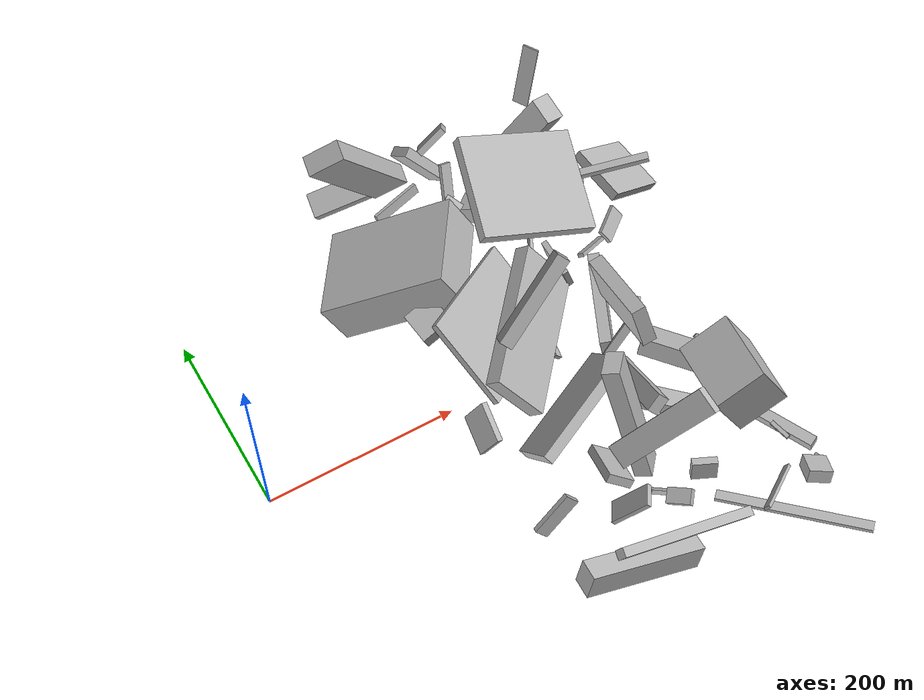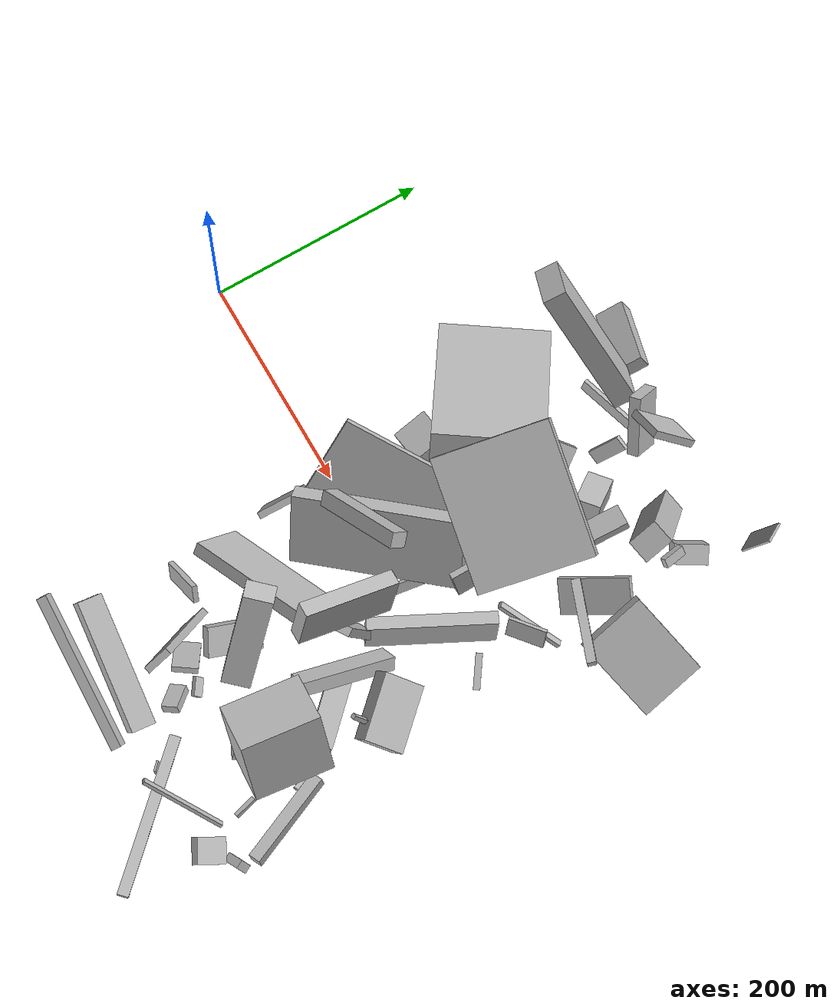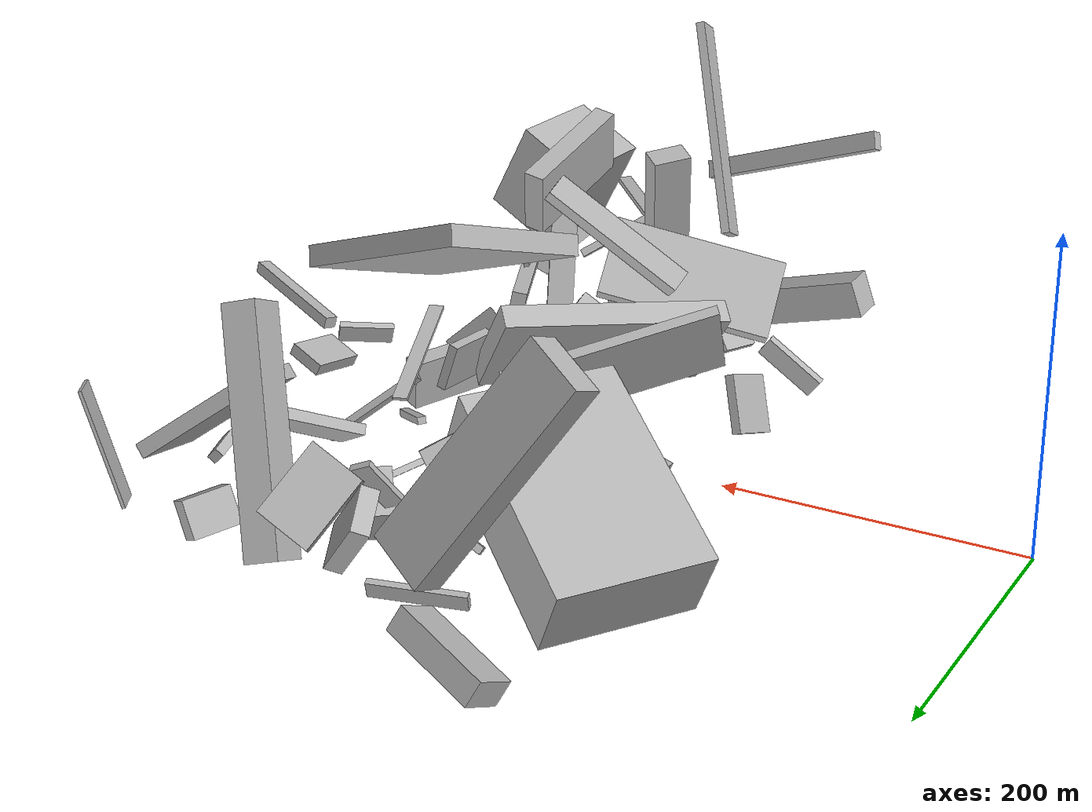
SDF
<sdf version="1.6">
 <world name="default">
  <model name="building_1">
   <static>0</static>
   <pose>309.46362390081805 201.35652738300936 47.48775551985342 0.43576493843103864 0.506766276595603 1.9743907321214966</pose>
   <link name="link">
    <gravity>0</gravity>
    <pose>0 0 19.0 0 0 0</pose>
    <collision name="collision"><geometry><box><size>4 13 38</size></box></geometry></collision>
    <visual name="visual">
     <cast_shadows>0</cast_shadows>
     <geometry><box><size>4 13 38</size></box></geometry>
     <material>
      <script>
       <uri>model://HANNAS_wall/materials/scripts</uri>
       <uri>model://HANNAS_wall/materials/textures</uri>
       <name>vrc/HANNAS_wall</name>
      </script>
     </material>
    </visual>
   </link>
  </model>
  <model name="building_3">
   <static>0</static>
   <pose>211.67828912738628 155.78817886532025 68.08862332421445 3.128858214851699 -0.5135115431409025 -0.5868482593631186</pose>
   <link name="link">
    <gravity>0</gravity>
    <pose>0 0 24.5 0 0 0</pose>
    <collision name="collision"><geometry><box><size>142 99 49</size></box></geometry></collision>
    <visual name="visual">
     <cast_shadows>0</cast_shadows>
     <geometry><box><size>142 99 49</size></box></geometry>
     <material>
      <script>
       <uri>model://HANNAS_wall/materials/scripts</uri>
       <uri>model://HANNAS_wall/materials/textures</uri>
       <name>vrc/HANNAS_wall</name>
      </script>
     </material>
    </visual>
   </link>
  </model>
  <model name="building_4">
   <static>0</static>
   <pose>359.27400351940173 -121.61541307797461 53.61073402621936 2.182763491040047 0.6218465289626921 -2.8656768899968434</pose>
   <link name="link">
    <gravity>0</gravity>
    <pose>0 0 47.5 0 0 0</pose>
    <collision name="collision"><geometry><box><size>19 13 95</size></box></geometry></collision>
    <visual name="visual">
     <cast_shadows>0</cast_shadows>
     <geometry><box><size>19 13 95</size></box></geometry>
     <material>
      <script>
       <uri>model://HANNAS_wall/materials/scripts</uri>
       <uri>model://HANNAS_wall/materials/textures</uri>
       <name>vrc/HANNAS_wall</name>
      </script>
     </material>
    </visual>
   </link>
  </model>
  <model name="building_7">
   <static>0</static>
   <pose>348.3013595316348 -232.51220273986084 62.30479469964007 -0.654387931315331 1.4542069693492485 -1.4633512062814251</pose>
   <link name="link">
    <gravity>0</gravity>
    <pose>0 0 72.0 0 0 0</pose>
    <collision name="collision"><geometry><box><size>4 10 144</size></box></geometry></collision>
    <visual name="visual">
     <cast_shadows>0</cast_shadows>
     <geometry><box><size>4 10 144</size></box></geometry>
     <material>
      <script>
       <uri>model://HANNAS_wall/materials/scripts</uri>
       <uri>model://HANNAS_wall/materials/textures</uri>
       <name>vrc/HANNAS_wall</name>
      </script>
     </material>
    </visual>
   </link>
  </model>
  <model name="building_9">
   <static>0</static>
   <pose>319.9178127410755 -129.8583718795964 98.54489155091844 -1.1713281129779392 -1.259479159622659 2.0318326055238733</pose>
   <link name="link">
    <gravity>0</gravity>
    <pose>0 0 13.0 0 0 0</pose>
    <collision name="collision"><geometry><box><size>150 17 26</size></box></geometry></collision>
    <visual name="visual">
     <cast_shadows>0</cast_shadows>
     <geometry><box><size>150 17 26</size></box></geometry>
     <material>
      <script>
       <uri>model://HANNAS_wall/materials/scripts</uri>
       <uri>model://HANNAS_wall/materials/textures</uri>
       <name>vrc/HANNAS_wall</name>
      </script>
     </material>
    </visual>
   </link>
  </model>
  <model name="building_10">
   <static>0</static>
   <pose>316.39583741115655 62.48465080775631 57.22004347062631 -1.201629691936962 -0.7011251375763857 1.9411494548542612</pose>
   <link name="link">
    <gravity>0</gravity>
    <pose>0 0 68.0 0 0 0</pose>
    <collision name="collision"><geometry><box><size>98 6 136</size></box></geometry></collision>
    <visual name="visual">
     <cast_shadows>0</cast_shadows>
     <geometry><box><size>98 6 136</size></box></geometry>
     <material>
      <script>
       <uri>model://HANNAS_wall/materials/scripts</uri>
       <uri>model://HANNAS_wall/materials/textures</uri>
       <name>vrc/HANNAS_wall</name>
      </script>
     </material>
    </visual>
   </link>
  </model>
  <model name="building_12">
   <static>0</static>
   <pose>385.51148551328515 62.179323880258615 59.6660498435576 -2.2493902127419956 -0.413842254702614 -0.6548503010820251</pose>
   <link name="link">
    <gravity>0</gravity>
    <pose>0 0 35.0 0 0 0</pose>
    <collision name="collision"><geometry><box><size>6 4 70</size></box></geometry></collision>
    <visual name="visual">
     <cast_shadows>0</cast_shadows>
     <geometry><box><size>6 4 70</size></box></geometry>
     <material>
      <script>
       <uri>model://HANNAS_wall/materials/scripts</uri>
       <uri>model://HANNAS_wall/materials/textures</uri>
       <name>vrc/HANNAS_wall</name>
      </script>
     </material>
    </visual>
   </link>
  </model>
  <model name="building_14">
   <static>0</static>
   <pose>264.49621758561995 -244.52331242339997 47.64009809487415 3.0064246165483777 0.28639670517796556 -0.1086999341273628</pose>
   <link name="link">
    <gravity>0</gravity>
    <pose>0 0 13.5 0 0 0</pose>
    <collision name="collision"><geometry><box><size>120 22 27</size></box></geometry></collision>
    <visual name="visual">
     <cast_shadows>0</cast_shadows>
     <geometry><box><size>120 22 27</size></box></geometry>
     <material>
      <script>
       <uri>model://HANNAS_wall/materials/scripts</uri>
       <uri>model://HANNAS_wall/materials/textures</uri>
       <name>vrc/HANNAS_wall</name>
      </script>
     </material>
    </visual>
   </link>
  </model>
  <model name="building_15">
   <static>0</static>
   <pose>371.9856344263977 -184.61784834907158 23.114268101412023 1.4476724623546866 -0.016943345255074002 -0.44664192721374096</pose>
   <link name="link">
    <gravity>0</gravity>
    <pose>0 0 4.0 0 0 0</pose>
    <collision name="collision"><geometry><box><size>25 23 8</size></box></geometry></collision>
    <visual name="visual">
     <cast_shadows>0</cast_shadows>
     <geometry><box><size>25 23 8</size></box></geometry>
     <material>
      <script>
       <uri>model://HANNAS_wall/materials/scripts</uri>
       <uri>model://HANNAS_wall/materials/textures</uri>
       <name>vrc/HANNAS_wall</name>
      </script>
     </material>
    </visual>
   </link>
  </model>
  <model name="building_17">
   <static>0</static>
   <pose>409.4886636101675 120.23899048069518 110.59745018672916 -0.6172711369329025 -1.3240112378763442 -2.879353847189306</pose>
   <link name="link">
    <gravity>0</gravity>
    <pose>0 0 39.0 0 0 0</pose>
    <collision name="collision"><geometry><box><size>7 8 78</size></box></geometry></collision>
    <visual name="visual">
     <cast_shadows>0</cast_shadows>
     <geometry><box><size>7 8 78</size></box></geometry>
     <material>
      <script>
       <uri>model://HANNAS_wall/materials/scripts</uri>
       <uri>model://HANNAS_wall/materials/textures</uri>
       <name>vrc/HANNAS_wall</name>
      </script>
     </material>
    </visual>
   </link>
  </model>
  <model name="building_19">
   <static>0</static>
   <pose>278.28148205647415 -171.71329424370396 103.8499662033756 -0.2710461245618236 0.407536978835516 -1.429517397415596</pose>
   <link name="link">
    <gravity>0</gravity>
    <pose>0 0 75.0 0 0 0</pose>
    <collision name="collision"><geometry><box><size>24 6 150</size></box></geometry></collision>
    <visual name="visual">
     <cast_shadows>0</cast_shadows>
     <geometry><box><size>24 6 150</size></box></geometry>
     <material>
      <script>
       <uri>model://HANNAS_wall/materials/scripts</uri>
       <uri>model://HANNAS_wall/materials/textures</uri>
       <name>vrc/HANNAS_wall</name>
      </script>
     </material>
    </visual>
   </link>
  </model>
  <model name="building_21">
   <static>0</static>
   <pose>451.4439782812763 -244.2115901558669 52.279972661034776 1.1323295374493418 0.17108012139445933 -0.4919120338889486</pose>
   <link name="link">
    <gravity>0</gravity>
    <pose>0 0 13.0 0 0 0</pose>
    <collision name="collision"><geometry><box><size>23 13 26</size></box></geometry></collision>
    <visual name="visual">
     <cast_shadows>0</cast_shadows>
     <geometry><box><size>23 13 26</size></box></geometry>
     <material>
      <script>
       <uri>model://HANNAS_wall/materials/scripts</uri>
       <uri>model://HANNAS_wall/materials/textures</uri>
       <name>vrc/HANNAS_wall</name>
      </script>
     </material>
    </visual>
   </link>
  </model>
  <model name="building_23">
   <static>0</static>
   <pose>304.738003514838 180.11330503812655 67.74197069879854 0.7941231796602019 -0.9836617274225596 -0.0971532040179213</pose>
   <link name="link">
    <gravity>0</gravity>
    <pose>0 0 13.5 0 0 0</pose>
    <collision name="collision"><geometry><box><size>9 19 27</size></box></geometry></collision>
    <visual name="visual">
     <cast_shadows>0</cast_shadows>
     <geometry><box><size>9 19 27</size></box></geometry>
     <material>
      <script>
       <uri>model://HANNAS_wall/materials/scripts</uri>
       <uri>model://HANNAS_wall/materials/textures</uri>
       <name>vrc/HANNAS_wall</name>
      </script>
     </material>
    </visual>
   </link>
  </model>
  <model name="building_24">
   <static>0</static>
   <pose>324.21815395612686 12.365732566802015 12.207041580689348 -0.09423448038242056 0.6741194637701514 2.9214239972737244</pose>
   <link name="link">
    <gravity>0</gravity>
    <pose>0 0 5.0 0 0 0</pose>
    <collision name="collision"><geometry><box><size>4 39 10</size></box></geometry></collision>
    <visual name="visual">
     <cast_shadows>0</cast_shadows>
     <geometry><box><size>4 39 10</size></box></geometry>
     <material>
      <script>
       <uri>model://HANNAS_wall/materials/scripts</uri>
       <uri>model://HANNAS_wall/materials/textures</uri>
       <name>vrc/HANNAS_wall</name>
      </script>
     </material>
    </visual>
   </link>
  </model>
  <model name="building_26">
   <static>0</static>
   <pose>420.7405414484789 221.76137710201016 59.321164204675554 1.2840117380409617 -0.769377723093428 0.39981676286321555</pose>
   <link name="link">
    <gravity>0</gravity>
    <pose>0 0 10.5 0 0 0</pose>
    <collision name="collision"><geometry><box><size>6 9 21</size></box></geometry></collision>
    <visual name="visual">
     <cast_shadows>0</cast_shadows>
     <geometry><box><size>6 9 21</size></box></geometry>
     <material>
      <script>
       <uri>model://HANNAS_wall/materials/scripts</uri>
       <uri>model://HANNAS_wall/materials/textures</uri>
       <name>vrc/HANNAS_wall</name>
      </script>
     </material>
    </visual>
   </link>
  </model>
  <model name="building_27">
   <static>0</static>
   <pose>220.97745476137584 -123.30411942724339 79.01978659322693 -1.2050605881555982 -0.8408907638800656 -1.4605159921123112</pose>
   <link name="link">
    <gravity>0</gravity>
    <pose>0 0 58.5 0 0 0</pose>
    <collision name="collision"><geometry><box><size>55 11 117</size></box></geometry></collision>
    <visual name="visual">
     <cast_shadows>0</cast_shadows>
     <geometry><box><size>55 11 117</size></box></geometry>
     <material>
      <script>
       <uri>model://HANNAS_wall/materials/scripts</uri>
       <uri>model://HANNAS_wall/materials/textures</uri>
       <name>vrc/HANNAS_wall</name>
      </script>
     </material>
    </visual>
   </link>
  </model>
  <model name="building_28">
   <static>0</static>
   <pose>421.57073112992236 -166.402727282559 103.28045651975125 -0.5056196899823714 0.04414128287469829 1.463042192567351</pose>
   <link name="link">
    <gravity>0</gravity>
    <pose>0 0 32.5 0 0 0</pose>
    <collision name="collision"><geometry><box><size>70 52 65</size></box></geometry></collision>
    <visual name="visual">
     <cast_shadows>0</cast_shadows>
     <geometry><box><size>70 52 65</size></box></geometry>
     <material>
      <script>
       <uri>model://HANNAS_wall/materials/scripts</uri>
       <uri>model://HANNAS_wall/materials/textures</uri>
       <name>vrc/HANNAS_wall</name>
      </script>
     </material>
    </visual>
   </link>
  </model>
  <model name="building_33">
   <static>0</static>
   <pose>222.95859791907768 -161.35242033915432 21.218085980553944 -1.9986892932430358 0.85907340463808 -0.40217064702903527</pose>
   <link name="link">
    <gravity>0</gravity>
    <pose>0 0 2.5 0 0 0</pose>
    <collision name="collision"><geometry><box><size>17 46 5</size></box></geometry></collision>
    <visual name="visual">
     <cast_shadows>0</cast_shadows>
     <geometry><box><size>17 46 5</size></box></geometry>
     <material>
      <script>
       <uri>model://HANNAS_wall/materials/scripts</uri>
       <uri>model://HANNAS_wall/materials/textures</uri>
       <name>vrc/HANNAS_wall</name>
      </script>
     </material>
    </visual>
   </link>
  </model>
  <model name="building_34">
   <static>0</static>
   <pose>417.29273005530035 22.91178297883453 12.531775327448083 -2.9493783547742725 -0.013909598977437296 0.9687678245279114</pose>
   <link name="link">
    <gravity>0</gravity>
    <pose>0 0 2.5 0 0 0</pose>
    <collision name="collision"><geometry><box><size>6 32 5</size></box></geometry></collision>
    <visual name="visual">
     <cast_shadows>0</cast_shadows>
     <geometry><box><size>6 32 5</size></box></geometry>
     <material>
      <script>
       <uri>model://HANNAS_wall/materials/scripts</uri>
       <uri>model://HANNAS_wall/materials/textures</uri>
       <name>vrc/HANNAS_wall</name>
      </script>
     </material>
    </visual>
   </link>
  </model>
  <model name="building_35">
   <static>0</static>
   <pose>435.0642640277096 -85.42450491516668 29.33039933083458 1.3902258920466453 0.9651706859474911 -2.5467349887934896</pose>
   <link name="link">
    <gravity>0</gravity>
    <pose>0 0 30.5 0 0 0</pose>
    <collision name="collision"><geometry><box><size>17 40 61</size></box></geometry></collision>
    <visual name="visual">
     <cast_shadows>0</cast_shadows>
     <geometry><box><size>17 40 61</size></box></geometry>
     <material>
      <script>
       <uri>model://HANNAS_wall/materials/scripts</uri>
       <uri>model://HANNAS_wall/materials/textures</uri>
       <name>vrc/HANNAS_wall</name>
      </script>
     </material>
    </visual>
   </link>
  </model>
  <model name="building_43">
   <static>0</static>
   <pose>278.47495943842875 -272.79881396623904 135.98663534047122 -1.9486189094106698 -0.3117445863660129 3.098020665418793</pose>
   <link name="link">
    <gravity>0</gravity>
    <pose>0 0 4.5 0 0 0</pose>
    <collision name="collision"><geometry><box><size>139 13 9</size></box></geometry></collision>
    <visual name="visual">
     <cast_shadows>0</cast_shadows>
     <geometry><box><size>139 13 9</size></box></geometry>
     <material>
      <script>
       <uri>model://HANNAS_wall/materials/scripts</uri>
       <uri>model://HANNAS_wall/materials/textures</uri>
       <name>vrc/HANNAS_wall</name>
      </script>
     </material>
    </visual>
   </link>
  </model>
  <model name="building_44">
   <static>0</static>
   <pose>353.75257113213337 77.10459535437823 76.96102128623212 -1.8045874940755202 -1.2650101131542568 -2.9171897401226636</pose>
   <link name="link">
    <gravity>0</gravity>
    <pose>0 0 21.0 0 0 0</pose>
    <collision name="collision"><geometry><box><size>30 6 42</size></box></geometry></collision>
    <visual name="visual">
     <cast_shadows>0</cast_shadows>
     <geometry><box><size>30 6 42</size></box></geometry>
     <material>
      <script>
       <uri>model://HANNAS_wall/materials/scripts</uri>
       <uri>model://HANNAS_wall/materials/textures</uri>
       <name>vrc/HANNAS_wall</name>
      </script>
     </material>
    </visual>
   </link>
  </model>
  <model name="building_45">
   <static>0</static>
   <pose>284.80275784662217 -6.012684874198516 144.15392835366106 -0.7570389780355352 0.6350587551150729 -2.831908424178896</pose>
   <link name="link">
    <gravity>0</gravity>
    <pose>0 0 7.5 0 0 0</pose>
    <collision name="collision"><geometry><box><size>99 14 15</size></box></geometry></collision>
    <visual name="visual">
     <cast_shadows>0</cast_shadows>
     <geometry><box><size>99 14 15</size></box></geometry>
     <material>
      <script>
       <uri>model://HANNAS_wall/materials/scripts</uri>
       <uri>model://HANNAS_wall/materials/textures</uri>
       <name>vrc/HANNAS_wall</name>
      </script>
     </material>
    </visual>
   </link>
  </model>
  <model name="building_47">
   <static>0</static>
   <pose>393.61168876020884 223.39231105958083 81.87107444291938 2.5748658122032033 -1.0926442467079471 -0.8256321600432848</pose>
   <link name="link">
    <gravity>0</gravity>
    <pose>0 0 14.0 0 0 0</pose>
    <collision name="collision"><geometry><box><size>150 22 28</size></box></geometry></collision>
    <visual name="visual">
     <cast_shadows>0</cast_shadows>
     <geometry><box><size>150 22 28</size></box></geometry>
     <material>
      <script>
       <uri>model://HANNAS_wall/materials/scripts</uri>
       <uri>model://HANNAS_wall/materials/textures</uri>
       <name>vrc/HANNAS_wall</name>
      </script>
     </material>
    </visual>
   </link>
  </model>
  <model name="building_48">
   <static>0</static>
   <pose>334.0310264785058 187.46232418129887 43.44139068615005 3.067728603372716 0.4645263409933384 2.215627900442582</pose>
   <link name="link">
    <gravity>0</gravity>
    <pose>0 0 11.5 0 0 0</pose>
    <collision name="collision"><geometry><box><size>36 23 23</size></box></geometry></collision>
    <visual name="visual">
     <cast_shadows>0</cast_shadows>
     <geometry><box><size>36 23 23</size></box></geometry>
     <material>
      <script>
       <uri>model://HANNAS_wall/materials/scripts</uri>
       <uri>model://HANNAS_wall/materials/textures</uri>
       <name>vrc/HANNAS_wall</name>
      </script>
     </material>
    </visual>
   </link>
  </model>
  <model name="building_50">
   <static>0</static>
   <pose>246.98811151247773 107.5499189951752 30.211697980508887 3.0939970801669077 0.9781684153351085 0.918383842802471</pose>
   <link name="link">
    <gravity>0</gravity>
    <pose>0 0 13.5 0 0 0</pose>
    <collision name="collision"><geometry><box><size>11 23 27</size></box></geometry></collision>
    <visual name="visual">
     <cast_shadows>0</cast_shadows>
     <geometry><box><size>11 23 27</size></box></geometry>
     <material>
      <script>
       <uri>model://HANNAS_wall/materials/scripts</uri>
       <uri>model://HANNAS_wall/materials/textures</uri>
       <name>vrc/HANNAS_wall</name>
      </script>
     </material>
    </visual>
   </link>
  </model>
  <model name="building_51">
   <static>0</static>
   <pose>415.40748344861305 233.39112325798635 17.18062067894897 -0.408704491964975 -0.12025387853727165 -2.087684509227728</pose>
   <link name="link">
    <gravity>0</gravity>
    <pose>0 0 12.0 0 0 0</pose>
    <collision name="collision"><geometry><box><size>30 18 24</size></box></geometry></collision>
    <visual name="visual">
     <cast_shadows>0</cast_shadows>
     <geometry><box><size>30 18 24</size></box></geometry>
     <material>
      <script>
       <uri>model://HANNAS_wall/materials/scripts</uri>
       <uri>model://HANNAS_wall/materials/textures</uri>
       <name>vrc/HANNAS_wall</name>
      </script>
     </material>
    </visual>
   </link>
  </model>
  <model name="building_54">
   <static>0</static>
   <pose>447.39536191367364 133.72383619271608 71.95958108905215 -2.1980076276316844 0.22523781184431688 -1.3897981237188317</pose>
   <link name="link">
    <gravity>0</gravity>
    <pose>0 0 44.0 0 0 0</pose>
    <collision name="collision"><geometry><box><size>62 10 88</size></box></geometry></collision>
    <visual name="visual">
     <cast_shadows>0</cast_shadows>
     <geometry><box><size>62 10 88</size></box></geometry>
     <material>
      <script>
       <uri>model://HANNAS_wall/materials/scripts</uri>
       <uri>model://HANNAS_wall/materials/textures</uri>
       <name>vrc/HANNAS_wall</name>
      </script>
     </material>
    </visual>
   </link>
  </model>
  <model name="building_56">
   <static>0</static>
   <pose>435.67925834151583 -221.82409053101406 75.5995149604561 1.2510732628540449 -1.235448662244879 -2.58537083395274</pose>
   <link name="link">
    <gravity>0</gravity>
    <pose>0 0 10.5 0 0 0</pose>
    <collision name="collision"><geometry><box><size>4 4 21</size></box></geometry></collision>
    <visual name="visual">
     <cast_shadows>0</cast_shadows>
     <geometry><box><size>4 4 21</size></box></geometry>
     <material>
      <script>
       <uri>model://HANNAS_wall/materials/scripts</uri>
       <uri>model://HANNAS_wall/materials/textures</uri>
       <name>vrc/HANNAS_wall</name>
      </script>
     </material>
    </visual>
   </link>
  </model>
  <model name="building_59">
   <static>0</static>
   <pose>287.56856198991227 -191.0329350182154 32.06704044113597 0.852179603677927 -0.06756857890048036 -2.164920205813818</pose>
   <link name="link">
    <gravity>0</gravity>
    <pose>0 0 2.5 0 0 0</pose>
    <collision name="collision"><geometry><box><size>23 47 5</size></box></geometry></collision>
    <visual name="visual">
     <cast_shadows>0</cast_shadows>
     <geometry><box><size>23 47 5</size></box></geometry>
     <material>
      <script>
       <uri>model://HANNAS_wall/materials/scripts</uri>
       <uri>model://HANNAS_wall/materials/textures</uri>
       <name>vrc/HANNAS_wall</name>
      </script>
     </material>
    </visual>
   </link>
  </model>
  <model name="building_61">
   <static>0</static>
   <pose>204.7642314358759 -69.83573403065903 29.37104500480845 -1.2322134432573884 0.344343416448662 0.010025877184712819</pose>
   <link name="link">
    <gravity>0</gravity>
    <pose>0 0 20.0 0 0 0</pose>
    <collision name="collision"><geometry><box><size>6 38 40</size></box></geometry></collision>
    <visual name="visual">
     <cast_shadows>0</cast_shadows>
     <geometry><box><size>6 38 40</size></box></geometry>
     <material>
      <script>
       <uri>model://HANNAS_wall/materials/scripts</uri>
       <uri>model://HANNAS_wall/materials/textures</uri>
       <name>vrc/HANNAS_wall</name>
      </script>
     </material>
    </visual>
   </link>
  </model>
  <model name="building_64">
   <static>0</static>
   <pose>349.87614661018023 -23.65503466333881 156.52186145321934 0.5793719680858855 1.21932601398018 -1.0513948202108727</pose>
   <link name="link">
    <gravity>0</gravity>
    <pose>0 0 43.0 0 0 0</pose>
    <collision name="collision"><geometry><box><size>43 14 86</size></box></geometry></collision>
    <visual name="visual">
     <cast_shadows>0</cast_shadows>
     <geometry><box><size>43 14 86</size></box></geometry>
     <material>
      <script>
       <uri>model://HANNAS_wall/materials/scripts</uri>
       <uri>model://HANNAS_wall/materials/textures</uri>
       <name>vrc/HANNAS_wall</name>
      </script>
     </material>
    </visual>
   </link>
  </model>
  <model name="building_65">
   <static>0</static>
   <pose>225.0116493211129 229.70889445980606 101.81156068992402 0.9635966097710222 -0.9494512501993817 -2.7802450249950637</pose>
   <link name="link">
    <gravity>0</gravity>
    <pose>0 0 10.5 0 0 0</pose>
    <collision name="collision"><geometry><box><size>147 40 21</size></box></geometry></collision>
    <visual name="visual">
     <cast_shadows>0</cast_shadows>
     <geometry><box><size>147 40 21</size></box></geometry>
     <material>
      <script>
       <uri>model://HANNAS_wall/materials/scripts</uri>
       <uri>model://HANNAS_wall/materials/textures</uri>
       <name>vrc/HANNAS_wall</name>
      </script>
     </material>
    </visual>
   </link>
  </model>
  <model name="building_66">
   <static>0</static>
   <pose>418.3958822642708 -95.19645110135758 89.97428523968723 -0.7564660911269616 1.0147678113805543 0.9951487006772307</pose>
   <link name="link">
    <gravity>0</gravity>
    <pose>0 0 2.0 0 0 0</pose>
    <collision name="collision"><geometry><box><size>19 4 4</size></box></geometry></collision>
    <visual name="visual">
     <cast_shadows>0</cast_shadows>
     <geometry><box><size>19 4 4</size></box></geometry>
     <material>
      <script>
       <uri>model://HANNAS_wall/materials/scripts</uri>
       <uri>model://HANNAS_wall/materials/textures</uri>
       <name>vrc/HANNAS_wall</name>
      </script>
     </material>
    </visual>
   </link>
  </model>
  <model name="building_67">
   <static>0</static>
   <pose>417.7539511972605 137.0576041384394 52.18081483228611 2.619375135762485 0.39121839755909704 -2.1899541628929993</pose>
   <link name="link">
    <gravity>0</gravity>
    <pose>0 0 3.5 0 0 0</pose>
    <collision name="collision"><geometry><box><size>65 32 7</size></box></geometry></collision>
    <visual name="visual">
     <cast_shadows>0</cast_shadows>
     <geometry><box><size>65 32 7</size></box></geometry>
     <material>
      <script>
       <uri>model://HANNAS_wall/materials/scripts</uri>
       <uri>model://HANNAS_wall/materials/textures</uri>
       <name>vrc/HANNAS_wall</name>
      </script>
     </material>
    </visual>
   </link>
  </model>
  <model name="building_71">
   <static>0</static>
   <pose>378.32891545938406 -0.6728211915060456 54.0742012687904 2.763316041153473 1.3594809775945986 -0.8243825657187652</pose>
   <link name="link">
    <gravity>0</gravity>
    <pose>0 0 6.0 0 0 0</pose>
    <collision name="collision"><geometry><box><size>33 113 12</size></box></geometry></collision>
    <visual name="visual">
     <cast_shadows>0</cast_shadows>
     <geometry><box><size>33 113 12</size></box></geometry>
     <material>
      <script>
       <uri>model://HANNAS_wall/materials/scripts</uri>
       <uri>model://HANNAS_wall/materials/textures</uri>
       <name>vrc/HANNAS_wall</name>
      </script>
     </material>
    </visual>
   </link>
  </model>
  <model name="building_74">
   <static>0</static>
   <pose>379.55210832760747 165.85460328718568 114.65049738227084 2.7279442623363623 -0.14441285842732954 1.5047941499944217</pose>
   <link name="link">
    <gravity>0</gravity>
    <pose>0 0 3.5 0 0 0</pose>
    <collision name="collision"><geometry><box><size>34 22 7</size></box></geometry></collision>
    <visual name="visual">
     <cast_shadows>0</cast_shadows>
     <geometry><box><size>34 22 7</size></box></geometry>
     <material>
      <script>
       <uri>model://HANNAS_wall/materials/scripts</uri>
       <uri>model://HANNAS_wall/materials/textures</uri>
       <name>vrc/HANNAS_wall</name>
      </script>
     </material>
    </visual>
   </link>
  </model>
  <model name="building_75">
   <static>0</static>
   <pose>371.0220122912098 137.795777773292 18.77227254112209 -1.2738981088767727 0.9643509508866762 2.906157793716607</pose>
   <link name="link">
    <gravity>0</gravity>
    <pose>0 0 75.0 0 0 0</pose>
    <collision name="collision"><geometry><box><size>4 4 150</size></box></geometry></collision>
    <visual name="visual">
     <cast_shadows>0</cast_shadows>
     <geometry><box><size>4 4 150</size></box></geometry>
     <material>
      <script>
       <uri>model://HANNAS_wall/materials/scripts</uri>
       <uri>model://HANNAS_wall/materials/textures</uri>
       <name>vrc/HANNAS_wall</name>
      </script>
     </material>
    </visual>
   </link>
  </model>
  <model name="building_76">
   <static>0</static>
   <pose>251.28766995060965 275.93454888660074 26.613808337311752 -2.2136398029424287 1.0258614401267725 0.7222145630232066</pose>
   <link name="link">
    <gravity>0</gravity>
    <pose>0 0 32.0 0 0 0</pose>
    <collision name="collision"><geometry><box><size>16 27 64</size></box></geometry></collision>
    <visual name="visual">
     <cast_shadows>0</cast_shadows>
     <geometry><box><size>16 27 64</size></box></geometry>
     <material>
      <script>
       <uri>model://HANNAS_wall/materials/scripts</uri>
       <uri>model://HANNAS_wall/materials/textures</uri>
       <name>vrc/HANNAS_wall</name>
      </script>
     </material>
    </visual>
   </link>
  </model>
  <model name="building_77">
   <static>0</static>
   <pose>396.39642815533114 89.66381264227996 143.61291168155446 0.7493833937141433 -1.1338315421405227 -0.9640103144228078</pose>
   <link name="link">
    <gravity>0</gravity>
    <pose>0 0 60.0 0 0 0</pose>
    <collision name="collision"><geometry><box><size>13 105 120</size></box></geometry></collision>
    <visual name="visual">
     <cast_shadows>0</cast_shadows>
     <geometry><box><size>13 105 120</size></box></geometry>
     <material>
      <script>
       <uri>model://HANNAS_wall/materials/scripts</uri>
       <uri>model://HANNAS_wall/materials/textures</uri>
       <name>vrc/HANNAS_wall</name>
      </script>
     </material>
    </visual>
   </link>
  </model>
  <model name="building_80">
   <static>0</static>
   <pose>408.69390540774714 55.48411799272462 82.06456642325107 1.4481560600463217 0.662067972769322 2.160000420391302</pose>
   <link name="link">
    <gravity>0</gravity>
    <pose>0 0 17.0 0 0 0</pose>
    <collision name="collision"><geometry><box><size>4 17 34</size></box></geometry></collision>
    <visual name="visual">
     <cast_shadows>0</cast_shadows>
     <geometry><box><size>4 17 34</size></box></geometry>
     <material>
      <script>
       <uri>model://HANNAS_wall/materials/scripts</uri>
       <uri>model://HANNAS_wall/materials/textures</uri>
       <name>vrc/HANNAS_wall</name>
      </script>
     </material>
    </visual>
   </link>
  </model>
  <model name="building_82">
   <static>0</static>
   <pose>268.96964365018755 240.45793522257873 20.443553072135458 1.9445422980418632 0.03256515977739619 -2.854301141310986</pose>
   <link name="link">
    <gravity>0</gravity>
    <pose>0 0 2.0 0 0 0</pose>
    <collision name="collision"><geometry><box><size>58 11 4</size></box></geometry></collision>
    <visual name="visual">
     <cast_shadows>0</cast_shadows>
     <geometry><box><size>58 11 4</size></box></geometry>
     <material>
      <script>
       <uri>model://HANNAS_wall/materials/scripts</uri>
       <uri>model://HANNAS_wall/materials/textures</uri>
       <name>vrc/HANNAS_wall</name>
      </script>
     </material>
    </visual>
   </link>
  </model>
  <model name="building_87">
   <static>0</static>
   <pose>469.02202329108053 -235.5501583344784 34.46597577369838 2.893318507036892 -1.0248088420385928 -2.446203044410778</pose>
   <link name="link">
    <gravity>0</gravity>
    <pose>0 0 8.0 0 0 0</pose>
    <collision name="collision"><geometry><box><size>14 8 16</size></box></geometry></collision>
    <visual name="visual">
     <cast_shadows>0</cast_shadows>
     <geometry><box><size>14 8 16</size></box></geometry>
     <material>
      <script>
       <uri>model://HANNAS_wall/materials/scripts</uri>
       <uri>model://HANNAS_wall/materials/textures</uri>
       <name>vrc/HANNAS_wall</name>
      </script>
     </material>
    </visual>
   </link>
  </model>
  <model name="building_88">
   <static>0</static>
   <pose>304.35676643942196 -12.58276322955756 53.19505349391557 -0.660185203699019 -0.09817053047958973 0.8509876177345367</pose>
   <link name="link">
    <gravity>0</gravity>
    <pose>0 0 34.0 0 0 0</pose>
    <collision name="collision"><geometry><box><size>150 16 68</size></box></geometry></collision>
    <visual name="visual">
     <cast_shadows>0</cast_shadows>
     <geometry><box><size>150 16 68</size></box></geometry>
     <material>
      <script>
       <uri>model://HANNAS_wall/materials/scripts</uri>
       <uri>model://HANNAS_wall/materials/textures</uri>
       <name>vrc/HANNAS_wall</name>
      </script>
     </material>
    </visual>
   </link>
  </model>
  <model name="building_89">
   <static>0</static>
   <pose>450.84960479211486 -184.70247966948529 42.54032110854434 3.110279651219704 -0.19604350151599476 0.4224626660918692</pose>
   <link name="link">
    <gravity>0</gravity>
    <pose>0 0 6.0 0 0 0</pose>
    <collision name="collision"><geometry><box><size>11 88 12</size></box></geometry></collision>
    <visual name="visual">
     <cast_shadows>0</cast_shadows>
     <geometry><box><size>11 88 12</size></box></geometry>
     <material>
      <script>
       <uri>model://HANNAS_wall/materials/scripts</uri>
       <uri>model://HANNAS_wall/materials/textures</uri>
       <name>vrc/HANNAS_wall</name>
      </script>
     </material>
    </visual>
   </link>
  </model>
  <model name="building_90">
   <static>0</static>
   <pose>290.2834002810731 176.54371848840196 27.52182230167809 -2.319593217047262 0.8470880754434289 0.9764493640421268</pose>
   <link name="link">
    <gravity>0</gravity>
    <pose>0 0 12.5 0 0 0</pose>
    <collision name="collision"><geometry><box><size>5 4 25</size></box></geometry></collision>
    <visual name="visual">
     <cast_shadows>0</cast_shadows>
     <geometry><box><size>5 4 25</size></box></geometry>
     <material>
      <script>
       <uri>model://HANNAS_wall/materials/scripts</uri>
       <uri>model://HANNAS_wall/materials/textures</uri>
       <name>vrc/HANNAS_wall</name>
      </script>
     </material>
    </visual>
   </link>
  </model>
  <model name="building_91">
   <static>0</static>
   <pose>238.1151280996354 83.29928899318728 44.662330572899535 1.9353371376800017 0.16920220804341254 -1.431323350384629</pose>
   <link name="link">
    <gravity>0</gravity>
    <pose>0 0 17.5 0 0 0</pose>
    <collision name="collision"><geometry><box><size>33 23 35</size></box></geometry></collision>
    <visual name="visual">
     <cast_shadows>0</cast_shadows>
     <geometry><box><size>33 23 35</size></box></geometry>
     <material>
      <script>
       <uri>model://HANNAS_wall/materials/scripts</uri>
       <uri>model://HANNAS_wall/materials/textures</uri>
       <name>vrc/HANNAS_wall</name>
      </script>
     </material>
    </visual>
   </link>
  </model>
  <model name="building_92">
   <static>0</static>
   <pose>331.59895286817255 276.43790248112884 57.00869540988783 0.6609531440563237 -0.521544385536461 0.07943907646896915</pose>
   <link name="link">
    <gravity>0</gravity>
    <pose>0 0 24.0 0 0 0</pose>
    <collision name="collision"><geometry><box><size>35 7 48</size></box></geometry></collision>
    <visual name="visual">
     <cast_shadows>0</cast_shadows>
     <geometry><box><size>35 7 48</size></box></geometry>
     <material>
      <script>
       <uri>model://HANNAS_wall/materials/scripts</uri>
       <uri>model://HANNAS_wall/materials/textures</uri>
       <name>vrc/HANNAS_wall</name>
      </script>
     </material>
    </visual>
   </link>
  </model>
  <model name="building_95">
   <static>0</static>
   <pose>314.1353096113019 -195.71511266112608 37.88427684113285 0.7999911672262142 -0.031184225046985002 2.5450775754588686</pose>
   <link name="link">
    <gravity>0</gravity>
    <pose>0 0 2.0 0 0 0</pose>
    <collision name="collision"><geometry><box><size>17 9 4</size></box></geometry></collision>
    <visual name="visual">
     <cast_shadows>0</cast_shadows>
     <geometry><box><size>17 9 4</size></box></geometry>
     <material>
      <script>
       <uri>model://HANNAS_wall/materials/scripts</uri>
       <uri>model://HANNAS_wall/materials/textures</uri>
       <name>vrc/HANNAS_wall</name>
      </script>
     </material>
    </visual>
   </link>
  </model>
  <model name="building_96">
   <static>0</static>
   <pose>343.2455073531721 -65.27161283373282 96.18857465204553 -1.3198467480624696 -1.2925497635606766 -1.264279774367428</pose>
   <link name="link">
    <gravity>0</gravity>
    <pose>0 0 8.5 0 0 0</pose>
    <collision name="collision"><geometry><box><size>95 8 17</size></box></geometry></collision>
    <visual name="visual">
     <cast_shadows>0</cast_shadows>
     <geometry><box><size>95 8 17</size></box></geometry>
     <material>
      <script>
       <uri>model://HANNAS_wall/materials/scripts</uri>
       <uri>model://HANNAS_wall/materials/textures</uri>
       <name>vrc/HANNAS_wall</name>
      </script>
     </material>
    </visual>
   </link>
  </model>
  <model name="building_97">
   <static>0</static>
   <pose>434.3062455342602 -158.92300688738462 61.64844893391588 0.1417067429007038 -0.19667500464516444 -2.7457849096536084</pose>
   <link name="link">
    <gravity>0</gravity>
    <pose>0 0 2.0 0 0 0</pose>
    <collision name="collision"><geometry><box><size>4 19 4</size></box></geometry></collision>
    <visual name="visual">
     <cast_shadows>0</cast_shadows>
     <geometry><box><size>4 19 4</size></box></geometry>
     <material>
      <script>
       <uri>model://HANNAS_wall/materials/scripts</uri>
       <uri>model://HANNAS_wall/materials/textures</uri>
       <name>vrc/HANNAS_wall</name>
      </script>
     </material>
    </visual>
   </link>
  </model>
  <model name="building_98">
   <static>0</static>
   <pose>287.98634748646856 -147.75434650891992 31.406218156114008 -0.5884831001153795 -0.46009945764798205 -1.785923744558135</pose>
   <link name="link">
    <gravity>0</gravity>
    <pose>0 0 4.5 0 0 0</pose>
    <collision name="collision"><geometry><box><size>53 27 9</size></box></geometry></collision>
    <visual name="visual">
     <cast_shadows>0</cast_shadows>
     <geometry><box><size>53 27 9</size></box></geometry>
     <material>
      <script>
       <uri>model://HANNAS_wall/materials/scripts</uri>
       <uri>model://HANNAS_wall/materials/textures</uri>
       <name>vrc/HANNAS_wall</name>
      </script>
     </material>
    </visual>
   </link>
  </model>
  <model name="building_99">
   <static>0</static>
   <pose>407.95413392304243 -128.39135733866024 14.771333472100626 -1.7257607356853988 -1.4306866633207096 0.9283973275283848</pose>
   <link name="link">
    <gravity>0</gravity>
    <pose>0 0 33.0 0 0 0</pose>
    <collision name="collision"><geometry><box><size>14 21 66</size></box></geometry></collision>
    <visual name="visual">
     <cast_shadows>0</cast_shadows>
     <geometry><box><size>14 21 66</size></box></geometry>
     <material>
      <script>
       <uri>model://HANNAS_wall/materials/scripts</uri>
       <uri>model://HANNAS_wall/materials/textures</uri>
       <name>vrc/HANNAS_wall</name>
      </script>
     </material>
    </visual>
   </link>
  </model>
  <model name="building_100">
   <static>0</static>
   <pose>314.9847246179685 -222.73398826884574 59.63356374725987 -1.2038177826981882 -0.3931065346950144 -0.8266119928104463</pose>
   <link name="link">
    <gravity>0</gravity>
    <pose>0 0 7.5 0 0 0</pose>
    <collision name="collision"><geometry><box><size>24 8 15</size></box></geometry></collision>
    <visual name="visual">
     <cast_shadows>0</cast_shadows>
     <geometry><box><size>24 8 15</size></box></geometry>
     <material>
      <script>
       <uri>model://HANNAS_wall/materials/scripts</uri>
       <uri>model://HANNAS_wall/materials/textures</uri>
       <name>vrc/HANNAS_wall</name>
      </script>
     </material>
    </visual>
   </link>
  </model>
  <model name="building_103">
   <static>0</static>
   <pose>361.12777213001823 -258.7124474777234 56.274338434840146 -2.858170553143808 -0.17287729470005597 -0.7358326620234528</pose>
   <link name="link">
    <gravity>0</gravity>
    <pose>0 0 3.5 0 0 0</pose>
    <collision name="collision"><geometry><box><size>10 2 7</size></box></geometry></collision>
    <visual name="visual">
     <cast_shadows>0</cast_shadows>
     <geometry><box><size>10 2 7</size></box></geometry>
     <material>
      <script>
       <uri>model://HANNAS_wall/materials/scripts</uri>
       <uri>model://HANNAS_wall/materials/textures</uri>
       <name>vrc/HANNAS_wall</name>
      </script>
     </material>
    </visual>
   </link>
  </model>
  <model name="building_104">
   <static>0</static>
   <pose>320.3911428573625 242.6650156914552 34.6229606023253 -0.48065040489768585 0.6355374103857326 1.8899796163662523</pose>
   <link name="link">
    <gravity>0</gravity>
    <pose>0 0 28.0 0 0 0</pose>
    <collision name="collision"><geometry><box><size>28 11 56</size></box></geometry></collision>
    <visual name="visual">
     <cast_shadows>0</cast_shadows>
     <geometry><box><size>28 11 56</size></box></geometry>
     <material>
      <script>
       <uri>model://HANNAS_wall/materials/scripts</uri>
       <uri>model://HANNAS_wall/materials/textures</uri>
       <name>vrc/HANNAS_wall</name>
      </script>
     </material>
    </visual>
   </link>
  </model>
  <model name="building_106">
   <static>0</static>
   <pose>449.0033665628488 279.83341508556134 83.75814242571285 -3.058172119830965 -1.3048793773423855 0.4449402402993001</pose>
   <link name="link">
    <gravity>0</gravity>
    <pose>0 0 1.0 0 0 0</pose>
    <collision name="collision"><geometry><box><size>73 18 2</size></box></geometry></collision>
    <visual name="visual">
     <cast_shadows>0</cast_shadows>
     <geometry><box><size>73 18 2</size></box></geometry>
     <material>
      <script>
       <uri>model://HANNAS_wall/materials/scripts</uri>
       <uri>model://HANNAS_wall/materials/textures</uri>
       <name>vrc/HANNAS_wall</name>
      </script>
     </material>
    </visual>
   </link>
  </model>
  <model name="building_111">
   <static>0</static>
   <pose>430.47163721521474 -234.478111400202 45.12191115102225 -0.8480227180017056 0.7688392536846399 2.729503734520036</pose>
   <link name="link">
    <gravity>0</gravity>
    <pose>0 0 40.0 0 0 0</pose>
    <collision name="collision"><geometry><box><size>6 3 80</size></box></geometry></collision>
    <visual name="visual">
     <cast_shadows>0</cast_shadows>
     <geometry><box><size>6 3 80</size></box></geometry>
     <material>
      <script>
       <uri>model://HANNAS_wall/materials/scripts</uri>
       <uri>model://HANNAS_wall/materials/textures</uri>
       <name>vrc/HANNAS_wall</name>
      </script>
     </material>
    </visual>
   </link>
  </model>
  <model name="building_112">
   <static>0</static>
   <pose>333.66274559637475 158.77407259937817 90.2623154317373 -1.1800959593559306 0.010166071461215705 -2.8669509568197755</pose>
   <link name="link">
    <gravity>0</gravity>
    <pose>0 0 40.0 0 0 0</pose>
    <collision name="collision"><geometry><box><size>9 2 80</size></box></geometry></collision>
    <visual name="visual">
     <cast_shadows>0</cast_shadows>
     <geometry><box><size>9 2 80</size></box></geometry>
     <material>
      <script>
       <uri>model://HANNAS_wall/materials/scripts</uri>
       <uri>model://HANNAS_wall/materials/textures</uri>
       <name>vrc/HANNAS_wall</name>
      </script>
     </material>
    </visual>
   </link>
  </model>
 </world>
</sdf>
